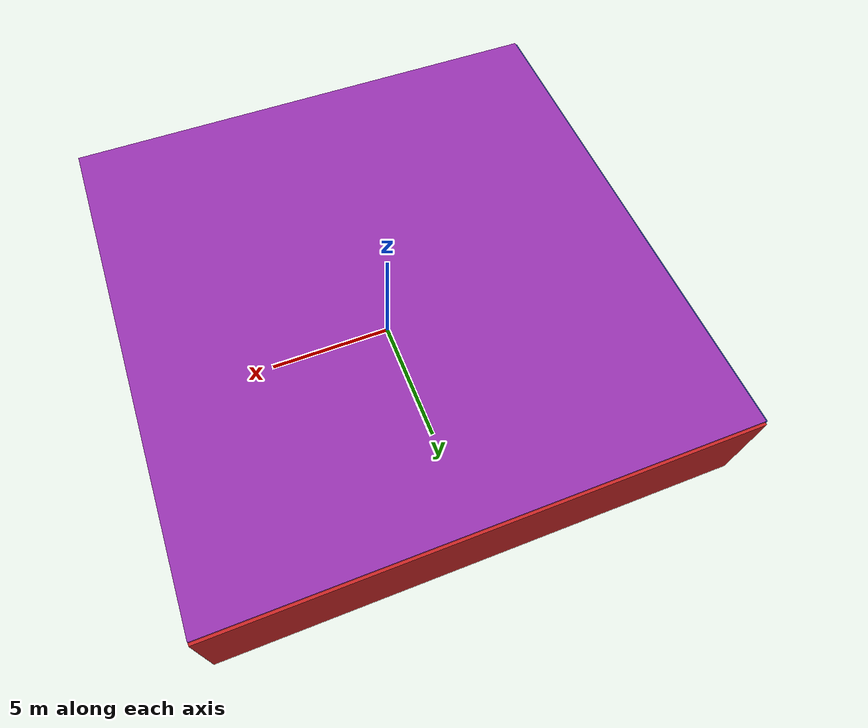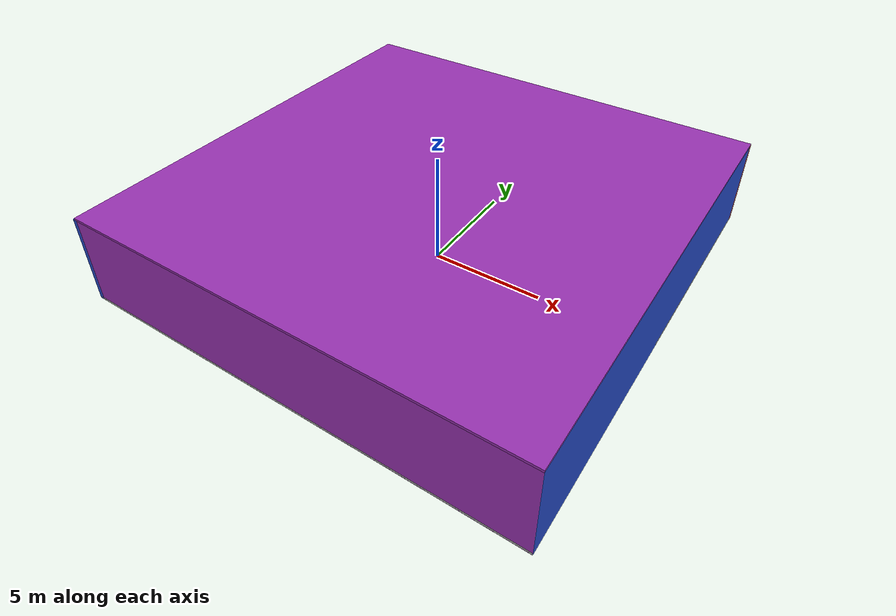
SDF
<sdf version="1.4">
 <world name="default">
  <physics type="ode">
   <max_step_size>0.001</max_step_size>
   <real_time_factor>1</real_time_factor>
   <real_time_update_rate>1000</real_time_update_rate>
   <gravity>0 0 -9.8</gravity>
  </physics>
  <scene><ambient>0.4 0.4 0.4 1</ambient><background>0.7 0.7 0.7 1</background><shadows>1</shadows></scene>
  <model name="Surrounding">
   <static>1</static>
   <link name="Ceiling">
    <collision name="Ceiling_Collision"><geometry><box><size>20 20 0.1</size></box></geometry></collision>
    <visual name="Ceiling_Visual">
     <geometry><box><size>20 20 0.1</size></box></geometry>
     <material>
      <script><uri>file://media/materials/scripts/gazebo.material</uri><name>Gazebo/PurpleGlow</name></script>
     </material>
    </visual>
    <pose>0 0 4.05 0 0 0</pose>
   </link>
   <link name="Wall_South">
    <collision name="Wall_South_Collision">
     <geometry><box><size>20 0 4</size></box></geometry>
     <pose>0 0 2 0 -0 0</pose>
    </collision>
    <visual name="Wall_South_Visual">
     <pose>0 0 2 0 -0 0</pose>
     <geometry><box><size>20 0 4</size></box></geometry>
     <material>
      <script><uri>file://media/materials/scripts/gazebo.material</uri><name>Gazebo/Purple</name></script>
     </material>
    </visual>
    <velocity_decay><linear>0</linear><angular>0</angular></velocity_decay>
    <pose>0 -10 0 0 -0 0</pose>
   </link>
   <link name="Wall_East">
    <collision name="Wall_21_Collision">
     <geometry><box><size>20 0 4</size></box></geometry>
     <pose>0 0 2 0 -0 0</pose>
    </collision>
    <visual name="Wall_21_Visual">
     <pose>0 0 2 0 -0 0</pose>
     <geometry><box><size>20 0 4</size></box></geometry>
     <material>
      <script><uri>file://media/materials/scripts/gazebo.material</uri><name>Gazebo/Blue</name></script>
     </material>
    </visual>
    <velocity_decay><linear>0</linear><angular>0</angular></velocity_decay>
    <pose>10 0 0 0 -0 1.5708</pose>
   </link>
   <link name="Wall_North">
    <collision name="Wall_22_Collision">
     <geometry><box><size>20 0.2 4</size></box></geometry>
     <pose>0 0 2 0 -0 0</pose>
    </collision>
    <visual name="Wall_22_Visual">
     <pose>0 0 2 0 -0 0</pose>
     <geometry><box><size>20 0.2 4</size></box></geometry>
     <material>
      <script><uri>file://media/materials/scripts/gazebo.material</uri><name>Gazebo/RedBright</name></script>
     </material>
    </visual>
    <velocity_decay><linear>0</linear><angular>0</angular></velocity_decay>
    <pose>0 10 0 0 -0 0</pose>
   </link>
   <link name="Wall_West">
    <collision name="Wall_23_Collision">
     <geometry><box><size>20 0.2 4</size></box></geometry>
     <pose>0 0 2 0 -0 0</pose>
    </collision>
    <visual name="Wall_23_Visual">
     <pose>0 0 2 0 -0 0</pose>
     <geometry><box><size>20 0.2 4</size></box></geometry>
     <material>
      <script><uri>file://media/materials/scripts/gazebo.material</uri><name>Gazebo/Blue</name></script>
     </material>
    </visual>
    <velocity_decay><linear>0</linear><angular>0</angular></velocity_decay>
    <pose>-10 0 0 0 0 -1.5708</pose>
   </link>
   <link name="Ground_link">
    <collision name="collision">
     <pose>0 0 .05 0 -0 0</pose>
     <geometry><box><size>20 20 0.1</size></box></geometry>
    </collision>
    <visual name="visual">
     <pose>0 0 .05 0 -0 0</pose>
     <geometry><box><size>20 20 0.1</size></box></geometry>
     <material>
      <script><uri>file://media/materials/scripts/gazebo.material</uri><name>Gazebo/PioneerBody</name></script>
     </material>
    </visual>
   </link>
   <static>1</static>
  </model>
  <spherical_coordinates>
   <surface_model>EARTH_WGS84</surface_model>
   <latitude_deg>0</latitude_deg>
   <longitude_deg>0</longitude_deg>
   <elevation>0</elevation>
   <heading_deg>0</heading_deg>
  </spherical_coordinates>
  <light name="lightball_0" type="diffuse">
   <diffuse>0.8 0.8 0.8 1</diffuse>
   <specular>0.2 0.2 0.2 1</specular>
   <attenuation>
    <range>100</range>
    <constant>0.7</constant>
    <linear>0.01</linear>
    <quadratic>0.001</quadratic>
   </attenuation>
   <direction>-0.5 0.1 -0.9</direction>
   <pose>8.52406458244 -0.169183950348 3.87429315334 0 0 0</pose>
  </light>
  <light name="lightball_1" type="diffuse">
   <diffuse>0.8 0.8 0.8 1</diffuse>
   <specular>0.2 0.2 0.2 1</specular>
   <attenuation>
    <range>100</range>
    <constant>0.7</constant>
    <linear>0.01</linear>
    <quadratic>0.001</quadratic>
   </attenuation>
   <direction>-0.5 0.1 -0.9</direction>
   <pose>4.73694979975 -8.79226500505 3.11640578013 0 0 0</pose>
  </light>
  <light name="lightball_2" type="diffuse">
   <diffuse>0.8 0.8 0.8 1</diffuse>
   <specular>0.2 0.2 0.2 1</specular>
   <attenuation>
    <range>100</range>
    <constant>0.7</constant>
    <linear>0.01</linear>
    <quadratic>0.001</quadratic>
   </attenuation>
   <direction>-0.5 0.1 -0.9</direction>
   <pose>-7.4973476309 1.13742365181 0.724278949703 0 0 0</pose>
  </light>
  <light name="lightball_3" type="diffuse">
   <diffuse>0.8 0.8 0.8 1</diffuse>
   <specular>0.2 0.2 0.2 1</specular>
   <attenuation>
    <range>100</range>
    <constant>0.7</constant>
    <linear>0.01</linear>
    <quadratic>0.001</quadratic>
   </attenuation>
   <direction>-0.5 0.1 -0.9</direction>
   <pose>4.38571078023 9.75873545118 1.32688981216 0 0 0</pose>
  </light>
  <light name="lightball_4" type="diffuse">
   <diffuse>0.8 0.8 0.8 1</diffuse>
   <specular>0.2 0.2 0.2 1</specular>
   <attenuation>
    <range>100</range>
    <constant>0.7</constant>
    <linear>0.01</linear>
    <quadratic>0.001</quadratic>
   </attenuation>
   <direction>-0.5 0.1 -0.9</direction>
   <pose>-7.63585691219 -2.53416970911 1.15564304304 0 0 0</pose>
  </light>
  <light name="lightball_5" type="diffuse">
   <diffuse>0.8 0.8 0.8 1</diffuse>
   <specular>0.2 0.2 0.2 1</specular>
   <attenuation>
    <range>100</range>
    <constant>0.7</constant>
    <linear>0.01</linear>
    <quadratic>0.001</quadratic>
   </attenuation>
   <direction>-0.5 0.1 -0.9</direction>
   <pose>-9.62743007481 -2.82781029521 2.41428292118 0 0 0</pose>
  </light>
  <light name="lightball_6" type="diffuse">
   <diffuse>0.8 0.8 0.8 1</diffuse>
   <specular>0.2 0.2 0.2 1</specular>
   <attenuation>
    <range>100</range>
    <constant>0.7</constant>
    <linear>0.01</linear>
    <quadratic>0.001</quadratic>
   </attenuation>
   <direction>-0.5 0.1 -0.9</direction>
   <pose>-4.04983253755 4.37036643945 2.48987915814 0 0 0</pose>
  </light>
  <include>
   <uri>model://textured_shapes</uri>
   <pose>-3.92453128341 1.44878696688 0 0 0 2.77708576036</pose>
  </include>
  <include>
   <uri>model://robocup_3Dsim_goal</uri>
   <pose>-1.48849872868 8.282642376 0 0 0 1.91705063561</pose>
  </include>
  <include>
   <uri>model://robocup_3Dsim_goal</uri>
   <pose>1.3279545497 -7.89206843486 0 0 0 1.72220979162</pose>
  </include>
  <include><uri>model://cabinet</uri><pose>1.14776674966 -0.907794668354 0 0 0 1.70255193205</pose></include>
  <include><uri>model://cabinet</uri><pose>1.32160583809 5.02577938982 0 0 0 2.0252505705</pose></include>
  <include>
   <uri>model://construction_cone</uri>
   <pose>6.91077471504 7.80330539967 0 0 0 1.62619902215</pose>
  </include>
 </world>
</sdf>

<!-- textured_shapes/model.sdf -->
<sdf version="1.6">
  <model name="textured_shapes">
    <pose>0 0 0.5 0 0 0</pose>
    <link name="box">
      <pose>0 -1.5 0 0 0 0</pose>
      <collision name="collision">
        <geometry>
          <box>
            <size>1 1 1</size>
          </box>
        </geometry>
      </collision>
      <visual name="visual">
        <geometry>
          <box>
            <size>1 1 1</size>
          </box>
        </geometry>
        <material>
          <script>
            <uri>model://../model_source/models/textured_shapes/materials/scripts</uri>
            <uri>model://../model_source/models/textured_shapes/materials/textures</uri>
            <name>TexturedShape/Squares</name>
          </script>
        </material>
      </visual>
    </link>
    <link name="sphere">
      <collision name="collision">
        <geometry>
          <sphere>
            <radius>0.5</radius>
          </sphere>
        </geometry>
      </collision>
      <visual name="visual">
        <geometry>
          <sphere>
            <radius>0.5</radius>
          </sphere>
        </geometry>
        <material>
          <script>
            <uri>model://../model_source/models/textured_shapes/materials/scripts</uri>
            <uri>model://../model_source/models/textured_shapes/materials/textures</uri>
            <name>TexturedShape/Squares</name>
          </script>
        </material>
      </visual>
    </link>
    <link name="cylinder">
      <pose>0 1.5 0 0 0 0</pose>
      <collision name="collision">
        <geometry>
          <cylinder>
            <radius>0.5</radius>
            <length>1</length>
          </cylinder>
        </geometry>
      </collision>
      <visual name="visual">
        <geometry>
          <cylinder>
            <radius>0.5</radius>
            <length>1</length>
          </cylinder>
        </geometry>
        <material>
          <script>
            <uri>model://../model_source/models/textured_shapes/materials/scripts</uri>
            <uri>model://../model_source/models/textured_shapes/materials/textures</uri>
            <name>TexturedShape/Squares</name>
          </script>
        </material>
      </visual>
    </link>
  </model>
</sdf>

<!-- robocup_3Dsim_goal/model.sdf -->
<sdf version="1.5">
  <model name="robocup_3d_goal">
    <static>true</static>
    <link name="left_post">
      <pose>0 1.05 0.45 0 0 0</pose>
      <collision name="collision">
        <geometry>
          <cylinder>
            <radius>0.05</radius>
            <length>0.9</length>
          </cylinder>
        </geometry>
      </collision>
      <visual name="visual">
        <geometry>
          <cylinder>
            <radius>0.05</radius>
            <length>0.9</length>
          </cylinder>
        </geometry>
        <material>
          <script>
            <uri>file://media/materials/scripts/gazebo.material</uri>
            <name>Gazebo/ZincYellow</name>
          </script>
        </material>
      </visual>
    </link>
    <link name="left_support_horiz_lower">
      <pose>0.30 1.05 0.01 0 0 0</pose>
      <collision name="collision">
        <geometry>
          <box>
            <size>0.50 0.02 0.02</size>
          </box>
        </geometry>
      </collision>
      <visual name="visual">
        <geometry>
          <box>
            <size>0.50 0.02 0.02</size>
          </box>
        </geometry>
        <material>
          <script>
            <uri>file://media/materials/scripts/gazebo.material</uri>
            <name>Gazebo/White</name>
          </script>
        </material>
      </visual>
    </link>
    <link name="left_support_horiz_upper">
      <pose>0.30 1.05 0.79 0 0 0</pose>
      <collision name="collision">
        <geometry>
          <box>
            <size>0.50 0.02 0.02</size>
          </box>
        </geometry>
      </collision>
      <visual name="visual">
        <geometry>
          <box>
            <size>0.50 0.02 0.02</size>
          </box>
        </geometry>
        <material>
          <script>
            <uri>file://media/materials/scripts/gazebo.material</uri>
            <name>Gazebo/White</name>
          </script>
        </material>
      </visual>
    </link>
    <link name="left_support_vertical">
      <pose>0.56 1.05 0.4 0 1.5708 0</pose>
      <collision name="collision">
        <geometry>
          <box>
            <size>0.80 0.02 0.02</size>
          </box>
        </geometry>
      </collision>
      <visual name="visual">
        <geometry>
          <box>
            <size>0.80 0.02 0.02</size>
          </box>
        </geometry>
        <material>
          <script>
            <uri>file://media/materials/scripts/gazebo.material</uri>
            <name>Gazebo/White</name>
          </script>
        </material>
      </visual>
    </link>
    <link name="right_support_horiz_lower">
      <pose>0.30 -1.05 0.01 0 0 0</pose>
      <collision name="collision">
        <geometry>
          <box>
            <size>0.50 0.02 0.02</size>
          </box>
        </geometry>
      </collision>
      <visual name="visual">
        <geometry>
          <box>
            <size>0.50 0.02 0.02</size>
          </box>
        </geometry>
        <material>
          <script>
            <uri>file://media/materials/scripts/gazebo.material</uri>
            <name>Gazebo/White</name>
          </script>
        </material>
      </visual>
    </link>
    <link name="right_support_horiz_upper">
      <pose>0.30 -1.05 0.79 0 0 0</pose>
      <collision name="collision">
        <geometry>
          <box>
            <size>0.50 0.02 0.02</size>
          </box>
        </geometry>
      </collision>
      <visual name="visual">
        <geometry>
          <box>
            <size>0.50 0.02 0.02</size>
          </box>
        </geometry>
        <material>
          <script>
            <uri>file://media/materials/scripts/gazebo.material</uri>
            <name>Gazebo/White</name>
          </script>
        </material>
      </visual>
    </link>
    <link name="right_support_vertical">
      <pose>0.56 -1.05 0.4 0 1.5708 0</pose>
      <collision name="collision">
        <geometry>
          <box>
            <size>0.80 0.02 0.02</size>
          </box>
        </geometry>
      </collision>
      <visual name="visual">
        <geometry>
          <box>
            <size>0.80 0.02 0.02</size>
          </box>
        </geometry>
        <material>
          <script>
            <uri>file://media/materials/scripts/gazebo.material</uri>
            <name>Gazebo/White</name>
          </script>
        </material>
      </visual>
    </link>
    <link name="center_support_horiz_lower">
      <pose>0.56 0 0.01 0 1.5708 0</pose>
      <collision name="collision">
        <geometry>
          <box>
            <size>0.02 2.08 0.02</size>
          </box>
        </geometry>
      </collision>
      <visual name="visual">
        <geometry>
          <box>
            <size>0.02 2.08 0.02</size>
          </box>
        </geometry>
        <material>
          <script>
            <uri>file://media/materials/scripts/gazebo.material</uri>
            <name>Gazebo/White</name>
          </script>
        </material>
      </visual>
    </link>
    <link name="center_support_horiz_upper">
      <pose>0.56 0 0.79 0 1.5708 0</pose>
      <collision name="collision">
        <geometry>
          <box>
            <size>0.02 2.08 0.02</size>
          </box>
        </geometry>
      </collision>
      <visual name="visual">
        <geometry>
          <box>
            <size>0.02 2.08 0.02</size>
          </box>
        </geometry>
        <material>
          <script>
            <uri>file://media/materials/scripts/gazebo.material</uri>
            <name>Gazebo/White</name>
          </script>
        </material>
      </visual>
    </link>
    <link name="right_post">
      <pose>0 -1.05 0.45 0 0 0</pose>
      <collision name="collision">
        <geometry>
          <cylinder>
            <radius>0.05</radius>
            <length>0.9</length>
          </cylinder>
        </geometry>
      </collision>
      <visual name="visual">
        <geometry>
          <cylinder>
            <radius>0.05</radius>
            <length>0.9</length>
          </cylinder>
        </geometry>
        <material>
          <script>
            <uri>file://media/materials/scripts/gazebo.material</uri>
            <name>Gazebo/ZincYellow</name>
          </script>
        </material>
      </visual>
    </link>
    <link name="crossbar">
      <pose>0 0 0.85 1.57 1.57 0</pose>
      <collision name="collision">
        <geometry>
          <cylinder>
            <radius>0.05</radius>
            <length>2.0</length>
          </cylinder>
        </geometry>
      </collision>
      <visual name="visual">
        <geometry>
          <cylinder>
            <radius>0.05</radius>
            <length>2.0</length>
          </cylinder>
        </geometry>
        <material>
          <script>
            <uri>file://media/materials/scripts/gazebo.material</uri>
            <name>Gazebo/ZincYellow</name>
          </script>
        </material>
      </visual>
    </link>
    <link name="center_net">
      <pose>0.56 0 0.40 0 0 0</pose>
      <collision name="collision">
        <geometry>
          <box>
            <size>0.01 2.1 0.80</size>
          </box>
        </geometry>
      </collision>
      <visual name="visual">
        <geometry>
          <box>
            <size>0.01 2.1 0.80</size>
          </box>
        </geometry>
        <material>
          <script>
            <uri>model://../model_source/models/robocup09_spl_field/materials/scripts/</uri>
            <uri>model://../model_source/models/robocup09_spl_field/materials/textures/</uri>
            <name>RoboCup/Net</name>
          </script>
        </material>
      </visual>
    </link>
    <link name="left_net">
      <pose>0.30 1.05 0.40 0 0 0</pose>
      <collision name="collision">
        <geometry>
          <box>
            <size>0.50 0.01 0.76</size>
          </box>
        </geometry>
      </collision>
      <visual name="visual">
        <geometry>
          <box>
            <size>0.50 0.01 0.76</size>
          </box>
        </geometry>
        <material>
          <script>
            <uri>model://../model_source/models/robocup09_spl_field/materials/scripts/</uri>
            <uri>model://../model_source/models/robocup09_spl_field/materials/textures/</uri>
            <name>RoboCup/Net</name>
          </script>
        </material>
      </visual>
    </link>
    <link name="right_net">
      <pose>0.30 -1.05 0.40 0 0 0</pose>
      <collision name="collision">
        <geometry>
          <box>
            <size>0.50 0.01 0.76</size>
          </box>
        </geometry>
      </collision>
      <visual name="visual">
        <geometry>
          <box>
            <size>0.50 0.01 0.76</size>
          </box>
        </geometry>
        <material>
          <script>
            <uri>model://../model_source/models/robocup09_spl_field/materials/scripts/</uri>
            <uri>model://../model_source/models/robocup09_spl_field/materials/textures/</uri>
            <name>RoboCup/Net</name>
          </script>
        </material>
      </visual>
    </link>
  </model>
</sdf>

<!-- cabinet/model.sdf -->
<sdf version="1.5">
  <model name="cabinet">
    <static>true</static>
    <link name="cabinet_bottom_plate">
      <inertial>
        <pose>0 0 -1 0 0 0</pose>
        <inertia>
          <ixx>2.050000</ixx>
          <ixy>0</ixy>
          <ixz>0</ixz>
          <iyy>2.050000</iyy>
          <iyz>0</iyz>
          <izz>2.050000</izz>
        </inertia>
        <mass>25.000000</mass>
      </inertial>
      <collision name="cabinet_bottom_plate_geom">
        <pose>0 0 0.010000 0 0 0</pose>
        <geometry>
          <box>
            <size>0.450000 0.450000 0.020000</size>
          </box>
        </geometry>
      </collision>
      <visual name="cabinet_bottom_plate_geom_visual">
        <pose>0 0 0.010000 0 0 0</pose>
        <geometry>
          <box>
            <size>0.450000 0.450000 0.020000</size>
          </box>
        </geometry>
        <material>
          <script>
            <uri>model://media/materials/scripts/gazebo.material</uri>
            <name>Gazebo/Wood</name>
          </script>
        </material>
      </visual>
      <collision name="cabinet_bottom_plate_geom_cabinet_back_plate">
        <pose>0.235000 0 0.510000 0 0 0</pose>
        <geometry>
          <box>
            <size>0.020000 0.450000 1.020000</size>
          </box>
        </geometry>
      </collision>
      <visual name="cabinet_bottom_plate_geom_cabinet_back_plate_visual">
        <pose>0.235000 0 0.510000 0 0 0</pose>
        <geometry>
          <box>
            <size>0.020000 0.450000 1.020000</size>
          </box>
        </geometry>
        <material>
          <script>
            <uri>model://media/materials/scripts/gazebo.material</uri>
            <name>Gazebo/Wood</name>
          </script>
        </material>
      </visual>
      <collision name="cabinet_bottom_plate_geom_cabinet_left_plate">
        <pose>0 0.235000 0.510000 0 0 0</pose>
        <geometry>
          <box>
            <size>0.450000 0.020000 1.020000</size>
          </box>
        </geometry>
      </collision>
      <visual name="cabinet_bottom_plate_geom_cabinet_left_plate_visual">
        <pose>0 0.235000 0.510000 0 0 0</pose>
        <geometry>
          <box>
            <size>0.450000 0.020000 1.020000</size>
          </box>
        </geometry>
        <material>
          <script>
            <uri>model://media/materials/scripts/gazebo.material</uri>
            <name>Gazebo/Wood</name>
          </script>
        </material>
      </visual>
      <collision name="cabinet_bottom_plate_geom_cabinet_middle_plate">
        <pose>0 0 0.510000 0 0 0</pose>
        <geometry>
          <box>
            <size>0.450000 0.450000 0.020000</size>
          </box>
        </geometry>
      </collision>
      <visual name="cabinet_bottom_plate_geom_cabinet_middle_plate_visual">
        <pose>0 0 0.510000 0 0 0</pose>
        <geometry>
          <box>
            <size>0.450000 0.450000 0.020000</size>
          </box>
        </geometry>
        <material>
          <script>
            <uri>model://media/materials/scripts/gazebo.material</uri>
            <name>Gazebo/Wood</name>
          </script>
        </material>
      </visual>
      <collision name="cabinet_bottom_plate_geom_cabinet_right_plate">
        <pose>0 -0.235000 0.510000 0 0 0</pose>
        <geometry>
          <box>
            <size>0.450000 0.020000 1.020000</size>
          </box>
        </geometry>
      </collision>
      <visual name="cabinet_bottom_plate_geom_cabinet_right_plate_visual">
        <pose>0 -0.235000 0.510000 0 0 0</pose>
        <geometry>
          <box>
            <size>0.450000 0.020000 1.020000</size>
          </box>
        </geometry>
        <material>
          <script>
            <uri>model://media/materials/scripts/gazebo.material</uri>
            <name>Gazebo/Wood</name>
          </script>
        </material>
      </visual>
      <collision name="cabinet_bottom_plate_geom_cabinet_top_plate">
        <pose>0 0 1.010000 0 0 0</pose>
        <geometry>
          <box>
            <size>0.450000 0.450000 0.020000</size>
          </box>
        </geometry>
      </collision>
      <visual name="cabinet_bottom_plate_geom_cabinet_top_plate_visual">
        <pose>0 0 1.010000 0 0 0</pose>
        <geometry>
          <box>
            <size>0.450000 0.450000 0.020000</size>
          </box>
        </geometry>
        <material>
          <script>
            <uri>model://media/materials/scripts/gazebo.material</uri>
            <name>Gazebo/Wood</name>
          </script>
        </material>
      </visual>
    </link>
  </model>
</sdf>

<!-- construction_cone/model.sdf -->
<sdf version="1.5">
  <model name="Construction Cone">
    <link name="link">
      <collision name="collision">
        <geometry>
          <mesh>
            <scale>10 10 10</scale>
            <uri>file://isr-testbed/construction_cone/meshes/construction_cone.dae</uri>
          </mesh>
        </geometry>
      </collision>
      <visual name="visual">
        <geometry>
          <mesh>
            <scale>10 10 10</scale>
            <uri>file://isr-testbed/construction_cone/meshes/construction_cone.dae</uri>
          </mesh>
        </geometry>
      </visual>
    </link>
  </model>
</sdf>
